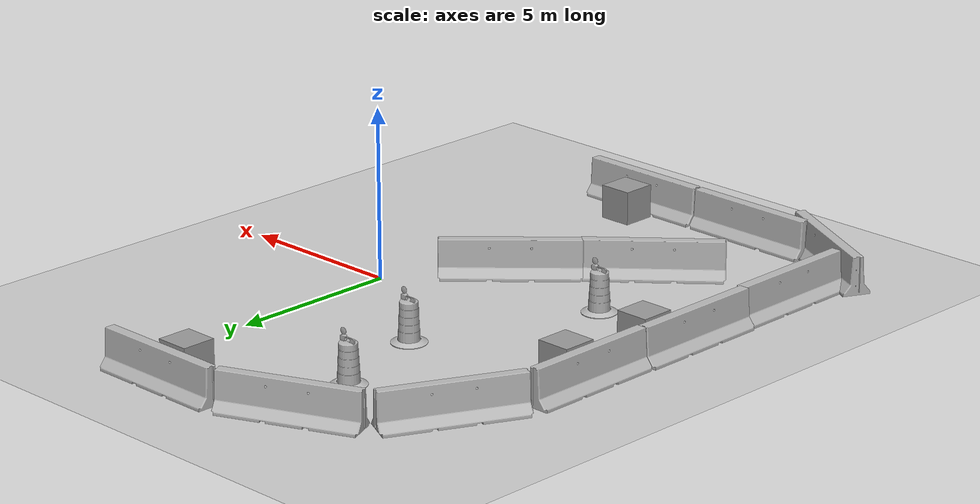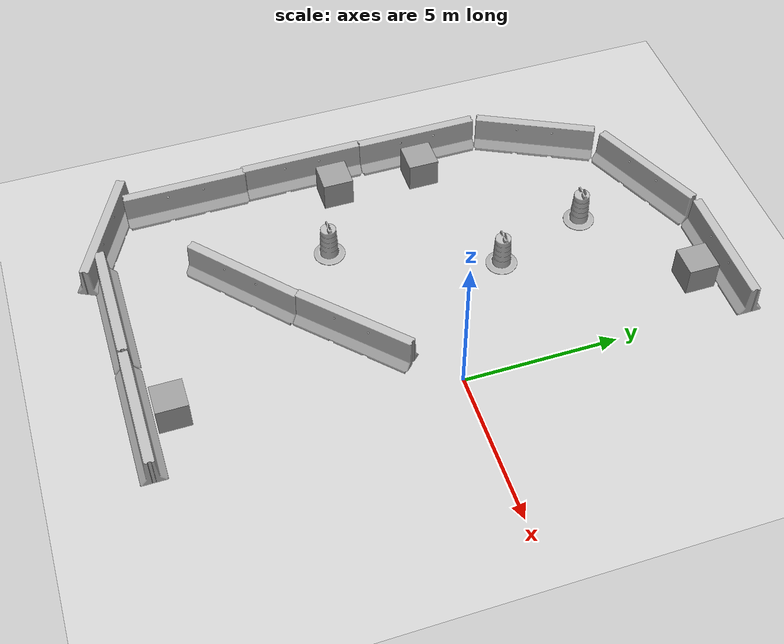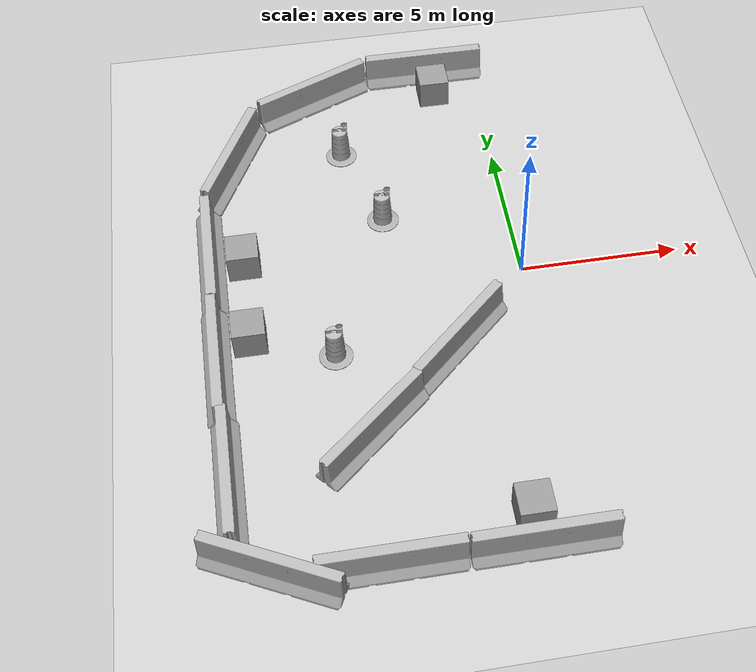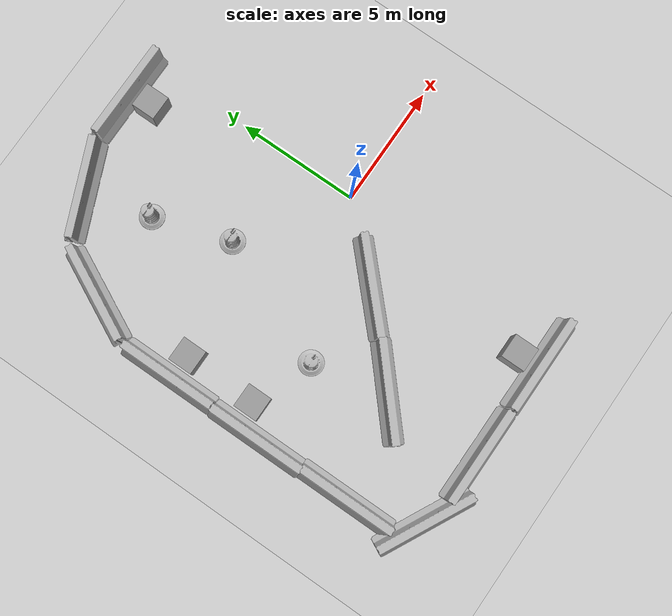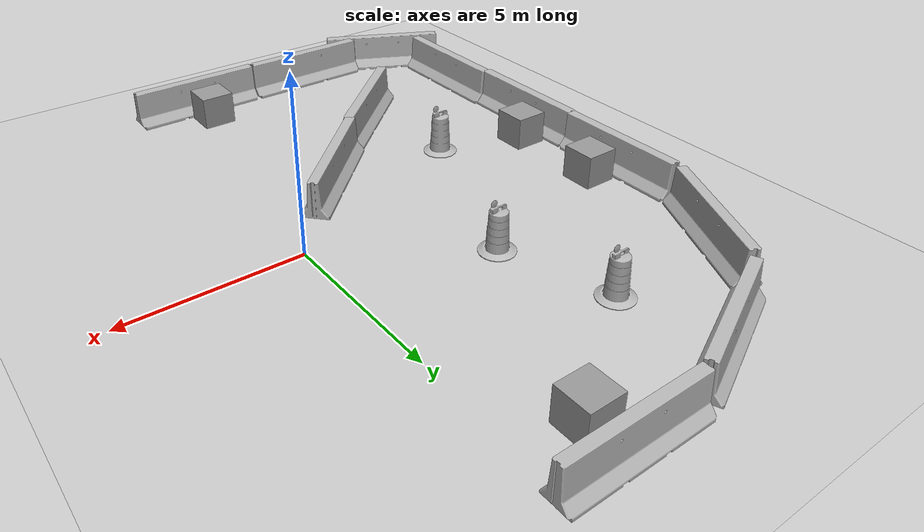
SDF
<sdf version="1.6">
 <world name="default">
  <model name="ground_plane">
   <static>1</static>
   <link name="link">
    <collision name="collision">
     <geometry><plane><normal>0 0 1</normal><size>100 100</size></plane></geometry>
     <surface><friction><ode><mu>100</mu><mu2>50</mu2></ode></friction></surface>
    </collision>
    <visual name="visual">
     <cast_shadows>0</cast_shadows>
     <geometry><plane><normal>0 0 1</normal><size>100 100</size></plane></geometry>
     <material>
      <script><uri>file://media/materials/scripts/gazebo.material</uri><name>Gazebo/Grey</name></script>
     </material>
    </visual>
   </link>
  </model>
  <model name="jersey_barrier">
   <static>1</static>
   <link name="link">
    <visual name="visual">
     <geometry>
      <mesh><uri>model://jersey_barrier/meshes/jersey_barrier.dae</uri><scale>1 1 1</scale></mesh>
     </geometry>
    </visual>
    <collision name="upright">
     <pose>0 0 0.5715 0 -0 0</pose>
     <geometry><box><size>4.06542 0.3063 1.143</size></box></geometry>
    </collision>
    <collision name="base">
     <pose>0 0 0.032258 0 -0 0</pose>
     <geometry><box><size>4.06542 0.8107 0.064516</size></box></geometry>
    </collision>
    <collision name="base2">
     <pose>0 0 0.1 0 -0 0</pose>
     <geometry><box><size>4.06542 0.65 0.1</size></box></geometry>
    </collision>
    <collision name="base3">
     <pose>0 0 0.2 0 -0 0</pose>
     <geometry><box><size>4.06542 0.5 0.1</size></box></geometry>
    </collision>
    <collision name="left-angle">
     <pose>0 -0.224 0.2401 0.9 -0 0</pose>
     <geometry><box><size>4.06542 0.5 0.064516</size></box></geometry>
    </collision>
    <collision name="right-angle">
     <pose>0 0.224 0.2401 -0.9 0 0</pose>
     <geometry><box><size>4.06542 0.5 0.064516</size></box></geometry>
    </collision>
   </link>
   <pose>-5.69058 8.51039 0 0 -0 0.403569</pose>
  </model>
  <model name="jersey_barrier_clone">
   <static>1</static>
   <link name="link">
    <visual name="visual">
     <geometry>
      <mesh><uri>model://jersey_barrier/meshes/jersey_barrier.dae</uri><scale>1 1 1</scale></mesh>
     </geometry>
    </visual>
    <collision name="upright">
     <pose>0 0 0.5715 0 -0 0</pose>
     <geometry><box><size>4.06542 0.3063 1.143</size></box></geometry>
    </collision>
    <collision name="base">
     <pose>0 0 0.032258 0 -0 0</pose>
     <geometry><box><size>4.06542 0.8107 0.064516</size></box></geometry>
    </collision>
    <collision name="base2">
     <pose>0 0 0.1 0 -0 0</pose>
     <geometry><box><size>4.06542 0.65 0.1</size></box></geometry>
    </collision>
    <collision name="base3">
     <pose>0 0 0.2 0 -0 0</pose>
     <geometry><box><size>4.06542 0.5 0.1</size></box></geometry>
    </collision>
    <collision name="left-angle">
     <pose>0 -0.224 0.2401 0.9 -0 0</pose>
     <geometry><box><size>4.06542 0.5 0.064516</size></box></geometry>
    </collision>
    <collision name="right-angle">
     <pose>0 0.224 0.2401 -0.9 0 0</pose>
     <geometry><box><size>4.06542 0.5 0.064516</size></box></geometry>
    </collision>
   </link>
   <pose>-1.65987 9.36075 0 0 -0 0</pose>
  </model>
  <model name="jersey_barrier_clone_2_clone_1">
   <static>1</static>
   <link name="link">
    <visual name="visual">
     <geometry>
      <mesh><uri>model://jersey_barrier/meshes/jersey_barrier.dae</uri><scale>1 1 1</scale></mesh>
     </geometry>
    </visual>
    <collision name="upright">
     <pose>0 0 0.5715 0 -0 0</pose>
     <geometry><box><size>4.06542 0.3063 1.143</size></box></geometry>
    </collision>
    <collision name="base">
     <pose>0 0 0.032258 0 -0 0</pose>
     <geometry><box><size>4.06542 0.8107 0.064516</size></box></geometry>
    </collision>
    <collision name="base2">
     <pose>0 0 0.1 0 -0 0</pose>
     <geometry><box><size>4.06542 0.65 0.1</size></box></geometry>
    </collision>
    <collision name="base3">
     <pose>0 0 0.2 0 -0 0</pose>
     <geometry><box><size>4.06542 0.5 0.1</size></box></geometry>
    </collision>
    <collision name="left-angle">
     <pose>0 -0.224 0.2401 0.9 -0 0</pose>
     <geometry><box><size>4.06542 0.5 0.064516</size></box></geometry>
    </collision>
    <collision name="right-angle">
     <pose>0 0.224 0.2401 -0.9 0 0</pose>
     <geometry><box><size>4.06542 0.5 0.064516</size></box></geometry>
    </collision>
   </link>
   <pose>-1.33414 -9.50852 0 0 -0 0</pose>
  </model>
  <model name="jersey_barrier_clone_2_clone_2">
   <static>1</static>
   <link name="link">
    <visual name="visual">
     <geometry>
      <mesh><uri>model://jersey_barrier/meshes/jersey_barrier.dae</uri><scale>1 1 1</scale></mesh>
     </geometry>
    </visual>
    <collision name="upright">
     <pose>0 0 0.5715 0 -0 0</pose>
     <geometry><box><size>4.06542 0.3063 1.143</size></box></geometry>
    </collision>
    <collision name="base">
     <pose>0 0 0.032258 0 -0 0</pose>
     <geometry><box><size>4.06542 0.8107 0.064516</size></box></geometry>
    </collision>
    <collision name="base2">
     <pose>0 0 0.1 0 -0 0</pose>
     <geometry><box><size>4.06542 0.65 0.1</size></box></geometry>
    </collision>
    <collision name="base3">
     <pose>0 0 0.2 0 -0 0</pose>
     <geometry><box><size>4.06542 0.5 0.1</size></box></geometry>
    </collision>
    <collision name="left-angle">
     <pose>0 -0.224 0.2401 0.9 -0 0</pose>
     <geometry><box><size>4.06542 0.5 0.064516</size></box></geometry>
    </collision>
    <collision name="right-angle">
     <pose>0 0.224 0.2401 -0.9 0 0</pose>
     <geometry><box><size>4.06542 0.5 0.064516</size></box></geometry>
    </collision>
   </link>
   <pose>-5.44605 -9.49634 0 0 -0 0</pose>
  </model>
  <model name="jersey_barrier_clone_3_clone_1_clone">
   <static>1</static>
   <link name="link">
    <visual name="visual">
     <geometry>
      <mesh><uri>model://jersey_barrier/meshes/jersey_barrier.dae</uri><scale>1 1 1</scale></mesh>
     </geometry>
    </visual>
    <collision name="upright">
     <pose>0 0 0.5715 0 -0 0</pose>
     <geometry><box><size>4.06542 0.3063 1.143</size></box></geometry>
    </collision>
    <collision name="base">
     <pose>0 0 0.032258 0 -0 0</pose>
     <geometry><box><size>4.06542 0.8107 0.064516</size></box></geometry>
    </collision>
    <collision name="base2">
     <pose>0 0 0.1 0 -0 0</pose>
     <geometry><box><size>4.06542 0.65 0.1</size></box></geometry>
    </collision>
    <collision name="base3">
     <pose>0 0 0.2 0 -0 0</pose>
     <geometry><box><size>4.06542 0.5 0.1</size></box></geometry>
    </collision>
    <collision name="left-angle">
     <pose>0 -0.224 0.2401 0.9 -0 0</pose>
     <geometry><box><size>4.06542 0.5 0.064516</size></box></geometry>
    </collision>
    <collision name="right-angle">
     <pose>0 0.224 0.2401 -0.9 0 0</pose>
     <geometry><box><size>4.06542 0.5 0.064516</size></box></geometry>
    </collision>
   </link>
   <pose>-9.54289 -6.33149 0 0 0 -1.56865</pose>
  </model>
  <model name="jersey_barrier_clone_3_clone_1_clone_0">
   <static>1</static>
   <link name="link">
    <visual name="visual">
     <geometry>
      <mesh><uri>model://jersey_barrier/meshes/jersey_barrier.dae</uri><scale>1 1 1</scale></mesh>
     </geometry>
    </visual>
    <collision name="upright">
     <pose>0 0 0.5715 0 -0 0</pose>
     <geometry><box><size>4.06542 0.3063 1.143</size></box></geometry>
    </collision>
    <collision name="base">
     <pose>0 0 0.032258 0 -0 0</pose>
     <geometry><box><size>4.06542 0.8107 0.064516</size></box></geometry>
    </collision>
    <collision name="base2">
     <pose>0 0 0.1 0 -0 0</pose>
     <geometry><box><size>4.06542 0.65 0.1</size></box></geometry>
    </collision>
    <collision name="base3">
     <pose>0 0 0.2 0 -0 0</pose>
     <geometry><box><size>4.06542 0.5 0.1</size></box></geometry>
    </collision>
    <collision name="left-angle">
     <pose>0 -0.224 0.2401 0.9 -0 0</pose>
     <geometry><box><size>4.06542 0.5 0.064516</size></box></geometry>
    </collision>
    <collision name="right-angle">
     <pose>0 0.224 0.2401 -0.9 0 0</pose>
     <geometry><box><size>4.06542 0.5 0.064516</size></box></geometry>
    </collision>
   </link>
   <pose>-9.6221 -2.35336 0 0 0 -1.56865</pose>
  </model>
  <model name="jersey_barrier_clone_3_clone_1_clone_1">
   <static>1</static>
   <link name="link">
    <visual name="visual">
     <geometry>
      <mesh><uri>model://jersey_barrier/meshes/jersey_barrier.dae</uri><scale>1 1 1</scale></mesh>
     </geometry>
    </visual>
    <collision name="upright">
     <pose>0 0 0.5715 0 -0 0</pose>
     <geometry><box><size>4.06542 0.3063 1.143</size></box></geometry>
    </collision>
    <collision name="base">
     <pose>0 0 0.032258 0 -0 0</pose>
     <geometry><box><size>4.06542 0.8107 0.064516</size></box></geometry>
    </collision>
    <collision name="base2">
     <pose>0 0 0.1 0 -0 0</pose>
     <geometry><box><size>4.06542 0.65 0.1</size></box></geometry>
    </collision>
    <collision name="base3">
     <pose>0 0 0.2 0 -0 0</pose>
     <geometry><box><size>4.06542 0.5 0.1</size></box></geometry>
    </collision>
    <collision name="left-angle">
     <pose>0 -0.224 0.2401 0.9 -0 0</pose>
     <geometry><box><size>4.06542 0.5 0.064516</size></box></geometry>
    </collision>
    <collision name="right-angle">
     <pose>0 0.224 0.2401 -0.9 0 0</pose>
     <geometry><box><size>4.06542 0.5 0.064516</size></box></geometry>
    </collision>
   </link>
   <pose>-9.58952 1.69745 0 0 0 -1.56865</pose>
  </model>
  <model name="jersey_barrier_clone_3_clone_1_clone_2">
   <static>1</static>
   <link name="link">
    <visual name="visual">
     <geometry>
      <mesh><uri>model://jersey_barrier/meshes/jersey_barrier.dae</uri><scale>1 1 1</scale></mesh>
     </geometry>
    </visual>
    <collision name="upright">
     <pose>0 0 0.5715 0 -0 0</pose>
     <geometry><box><size>4.06542 0.3063 1.143</size></box></geometry>
    </collision>
    <collision name="base">
     <pose>0 0 0.032258 0 -0 0</pose>
     <geometry><box><size>4.06542 0.8107 0.064516</size></box></geometry>
    </collision>
    <collision name="base2">
     <pose>0 0 0.1 0 -0 0</pose>
     <geometry><box><size>4.06542 0.65 0.1</size></box></geometry>
    </collision>
    <collision name="base3">
     <pose>0 0 0.2 0 -0 0</pose>
     <geometry><box><size>4.06542 0.5 0.1</size></box></geometry>
    </collision>
    <collision name="left-angle">
     <pose>0 -0.224 0.2401 0.9 -0 0</pose>
     <geometry><box><size>4.06542 0.5 0.064516</size></box></geometry>
    </collision>
    <collision name="right-angle">
     <pose>0 0.224 0.2401 -0.9 0 0</pose>
     <geometry><box><size>4.06542 0.5 0.064516</size></box></geometry>
    </collision>
   </link>
   <pose>-8.67609 5.71375 0 0 0 -2.03081</pose>
  </model>
  <model name="Construction Barrel_0">
   <link name="link">
    <inertial>
     <pose>0 0 0.4 0 -0 0</pose>
     <mass>1000</mass>
     <inertia><ixx>51.2096</ixx><iyy>51.2096</iyy><izz>25</izz><ixy>0</ixy><ixz>0</ixz><iyz>0</iyz></inertia>
    </inertial>
    <collision name="collision">
     <geometry>
      <mesh><uri>model://construction_barrel/meshes/construction_barrel.dae</uri><scale>1 1 1</scale></mesh>
     </geometry>
    </collision>
    <visual name="visual">
     <geometry>
      <mesh><uri>model://construction_barrel/meshes/construction_barrel.dae</uri><scale>1 1 1</scale></mesh>
     </geometry>
    </visual>
   </link>
   <pose>-4.02192 2.75388 -2e-06 7e-06 -5e-06 -0.001206</pose>
  </model>
  <model name="Construction Barrel_2">
   <link name="link">
    <inertial>
     <pose>0 0 0.4 0 -0 0</pose>
     <mass>1000</mass>
     <inertia><ixx>51.2096</ixx><iyy>51.2096</iyy><izz>25</izz><ixy>0</ixy><ixz>0</ixz><iyz>0</iyz></inertia>
    </inertial>
    <collision name="collision">
     <geometry>
      <mesh><uri>model://construction_barrel/meshes/construction_barrel.dae</uri><scale>1 1 1</scale></mesh>
     </geometry>
    </collision>
    <visual name="visual">
     <geometry>
      <mesh><uri>model://construction_barrel/meshes/construction_barrel.dae</uri><scale>1 1 1</scale></mesh>
     </geometry>
    </visual>
   </link>
   <pose>-5.01481 5.87202 0 0 0 -0.001081</pose>
  </model>
  <model name="Construction Barrel_4">
   <link name="link">
    <inertial>
     <pose>0 0 0.4 0 -0 0</pose>
     <mass>1000</mass>
     <inertia><ixx>51.2096</ixx><iyy>51.2096</iyy><izz>25</izz><ixy>0</ixy><ixz>0</ixz><iyz>0</iyz></inertia>
    </inertial>
    <collision name="collision">
     <geometry>
      <mesh><uri>model://construction_barrel/meshes/construction_barrel.dae</uri><scale>1 1 1</scale></mesh>
     </geometry>
    </collision>
    <visual name="visual">
     <geometry>
      <mesh><uri>model://construction_barrel/meshes/construction_barrel.dae</uri><scale>1 1 1</scale></mesh>
     </geometry>
    </visual>
   </link>
   <pose>-6.13233 -2.39935 -2e-06 -5e-06 -6e-06 -0.001282</pose>
  </model>
  <model name="unit_box_2">
   <pose>-1.45742 -8.55002 0.499995 1e-05 -0 0</pose>
   <link name="link">
    <inertial>
     <mass>1</mass>
     <inertia>
      <ixx>0.166667</ixx>
      <ixy>0</ixy>
      <ixz>0</ixz>
      <iyy>0.166667</iyy>
      <iyz>0</iyz>
      <izz>0.166667</izz>
     </inertia>
    </inertial>
    <collision name="collision"><geometry><box><size>1 1 1</size></box></geometry></collision>
    <visual name="visual">
     <geometry><box><size>1 1 1</size></box></geometry>
     <material>
      <script><name>Gazebo/Grey</name><uri>file://media/materials/scripts/gazebo.material</uri></script>
     </material>
    </visual>
   </link>
  </model>
  <model name="unit_box_4">
   <pose>-8.60737 -1.47961 0.499995 1e-05 -0 0</pose>
   <link name="link">
    <inertial>
     <mass>1</mass>
     <inertia>
      <ixx>0.166667</ixx>
      <ixy>0</ixy>
      <ixz>0</ixz>
      <iyy>0.166667</iyy>
      <iyz>0</iyz>
      <izz>0.166667</izz>
     </inertia>
    </inertial>
    <collision name="collision"><geometry><box><size>1 1 1</size></box></geometry></collision>
    <visual name="visual">
     <geometry><box><size>1 1 1</size></box></geometry>
     <material>
      <script><name>Gazebo/Grey</name><uri>file://media/materials/scripts/gazebo.material</uri></script>
     </material>
    </visual>
   </link>
  </model>
  <model name="unit_box_5">
   <pose>-8.58047 1.48863 0.499995 1e-05 -0 0</pose>
   <link name="link">
    <inertial>
     <mass>1</mass>
     <inertia>
      <ixx>0.166667</ixx>
      <ixy>0</ixy>
      <ixz>0</ixz>
      <iyy>0.166667</iyy>
      <iyz>0</iyz>
      <izz>0.166667</izz>
     </inertia>
    </inertial>
    <collision name="collision"><geometry><box><size>1 1 1</size></box></geometry></collision>
    <visual name="visual">
     <geometry><box><size>1 1 1</size></box></geometry>
     <material>
      <script><name>Gazebo/Grey</name><uri>file://media/materials/scripts/gazebo.material</uri></script>
     </material>
    </visual>
   </link>
  </model>
  <model name="unit_box_7">
   <pose>-1.49863 8.32437 0.499995 1e-05 -0 0</pose>
   <link name="link">
    <inertial>
     <mass>1</mass>
     <inertia>
      <ixx>0.166667</ixx>
      <ixy>0</ixy>
      <ixz>0</ixz>
      <iyy>0.166667</iyy>
      <iyz>0</iyz>
      <izz>0.166667</izz>
     </inertia>
    </inertial>
    <collision name="collision"><geometry><box><size>1 1 1</size></box></geometry></collision>
    <visual name="visual">
     <geometry><box><size>1 1 1</size></box></geometry>
     <material>
      <script><name>Gazebo/Grey</name><uri>file://media/materials/scripts/gazebo.material</uri></script>
     </material>
    </visual>
   </link>
  </model>
  <model name="jersey_barrier_0">
   <static>1</static>
   <link name="link">
    <visual name="visual">
     <geometry>
      <mesh><uri>model://jersey_barrier/meshes/jersey_barrier.dae</uri><scale>1 1 1</scale></mesh>
     </geometry>
    </visual>
    <collision name="upright">
     <pose>0 0 0.5715 0 -0 0</pose>
     <geometry><box><size>4.06542 0.3063 1.143</size></box></geometry>
    </collision>
    <collision name="base">
     <pose>0 0 0.032258 0 -0 0</pose>
     <geometry><box><size>4.06542 0.8107 0.064516</size></box></geometry>
    </collision>
    <collision name="base2">
     <pose>0 0 0.1 0 -0 0</pose>
     <geometry><box><size>4.06542 0.65 0.1</size></box></geometry>
    </collision>
    <collision name="base3">
     <pose>0 0 0.2 0 -0 0</pose>
     <geometry><box><size>4.06542 0.5 0.1</size></box></geometry>
    </collision>
    <collision name="left-angle">
     <pose>0 -0.224 0.2401 0.9 -0 0</pose>
     <geometry><box><size>4.06542 0.5 0.064516</size></box></geometry>
    </collision>
    <collision name="right-angle">
     <pose>0 0.224 0.2401 -0.9 0 0</pose>
     <geometry><box><size>4.06542 0.5 0.064516</size></box></geometry>
    </collision>
   </link>
   <pose>-2.48974 -2.65676 0 0 0 -2.38315</pose>
  </model>
  <model name="jersey_barrier_1">
   <static>1</static>
   <link name="link">
    <visual name="visual">
     <geometry>
      <mesh><uri>model://jersey_barrier/meshes/jersey_barrier.dae</uri><scale>1 1 1</scale></mesh>
     </geometry>
    </visual>
    <collision name="upright">
     <pose>0 0 0.5715 0 -0 0</pose>
     <geometry><box><size>4.06542 0.3063 1.143</size></box></geometry>
    </collision>
    <collision name="base">
     <pose>0 0 0.032258 0 -0 0</pose>
     <geometry><box><size>4.06542 0.8107 0.064516</size></box></geometry>
    </collision>
    <collision name="base2">
     <pose>0 0 0.1 0 -0 0</pose>
     <geometry><box><size>4.06542 0.65 0.1</size></box></geometry>
    </collision>
    <collision name="base3">
     <pose>0 0 0.2 0 -0 0</pose>
     <geometry><box><size>4.06542 0.5 0.1</size></box></geometry>
    </collision>
    <collision name="left-angle">
     <pose>0 -0.224 0.2401 0.9 -0 0</pose>
     <geometry><box><size>4.06542 0.5 0.064516</size></box></geometry>
    </collision>
    <collision name="right-angle">
     <pose>0 0.224 0.2401 -0.9 0 0</pose>
     <geometry><box><size>4.06542 0.5 0.064516</size></box></geometry>
    </collision>
   </link>
   <pose>-5.39825 -5.37861 0 0 0 -2.41915</pose>
  </model>
  <model name="jersey_barrier_2">
   <static>1</static>
   <link name="link">
    <visual name="visual">
     <geometry>
      <mesh><uri>model://jersey_barrier/meshes/jersey_barrier.dae</uri><scale>1 1 1</scale></mesh>
     </geometry>
    </visual>
    <collision name="upright">
     <pose>0 0 0.5715 0 -0 0</pose>
     <geometry><box><size>4.06542 0.3063 1.143</size></box></geometry>
    </collision>
    <collision name="base">
     <pose>0 0 0.032258 0 -0 0</pose>
     <geometry><box><size>4.06542 0.8107 0.064516</size></box></geometry>
    </collision>
    <collision name="base2">
     <pose>0 0 0.1 0 -0 0</pose>
     <geometry><box><size>4.06542 0.65 0.1</size></box></geometry>
    </collision>
    <collision name="base3">
     <pose>0 0 0.2 0 -0 0</pose>
     <geometry><box><size>4.06542 0.5 0.1</size></box></geometry>
    </collision>
    <collision name="left-angle">
     <pose>0 -0.224 0.2401 0.9 -0 0</pose>
     <geometry><box><size>4.06542 0.5 0.064516</size></box></geometry>
    </collision>
    <collision name="right-angle">
     <pose>0 0.224 0.2401 -0.9 0 0</pose>
     <geometry><box><size>4.06542 0.5 0.064516</size></box></geometry>
    </collision>
   </link>
   <pose>-8.57225 -9.18096 0 0 0 -0.466846</pose>
  </model>
 </world>
</sdf>
